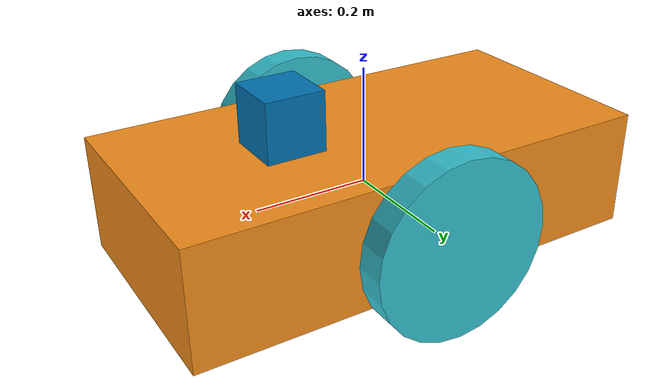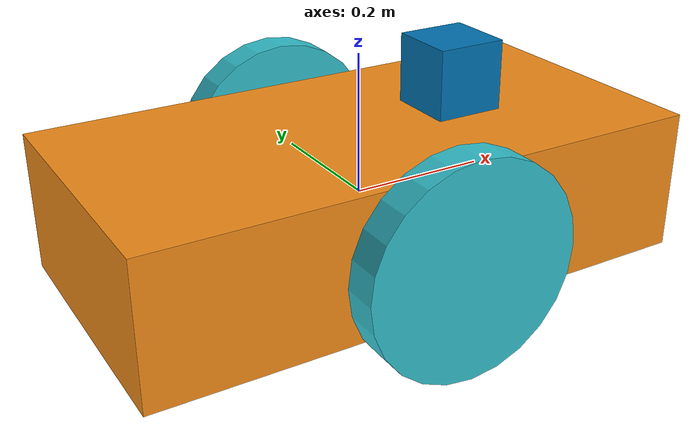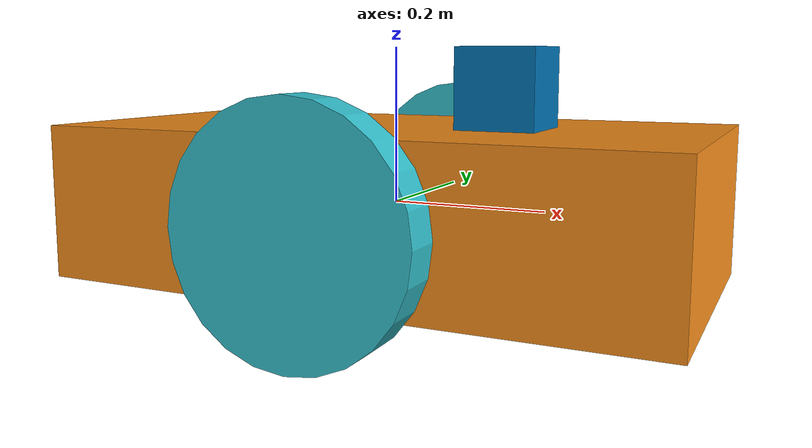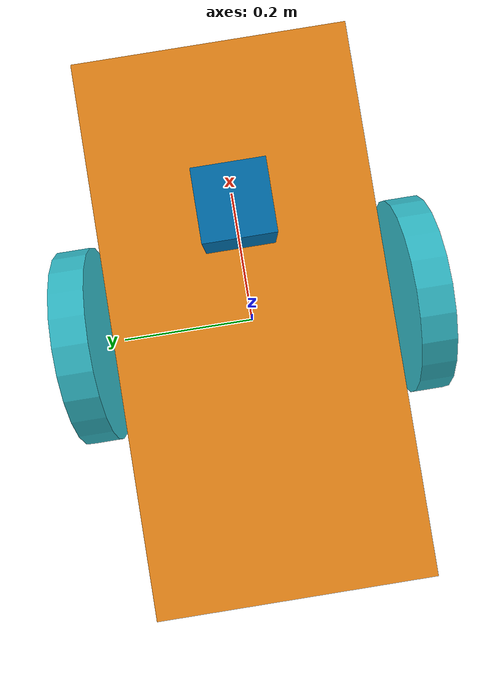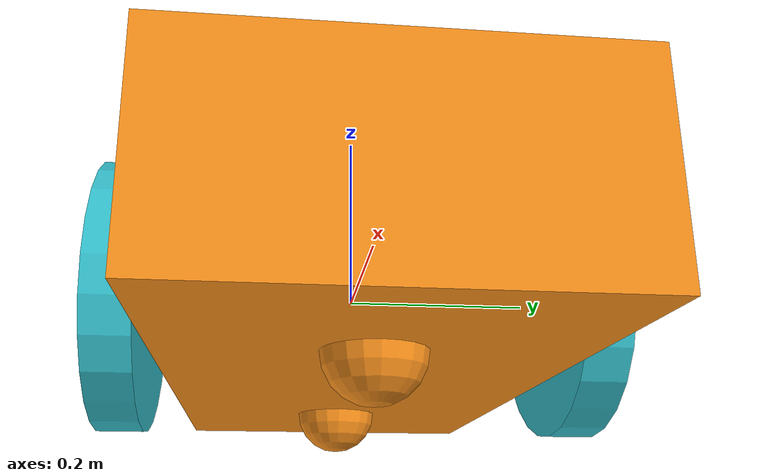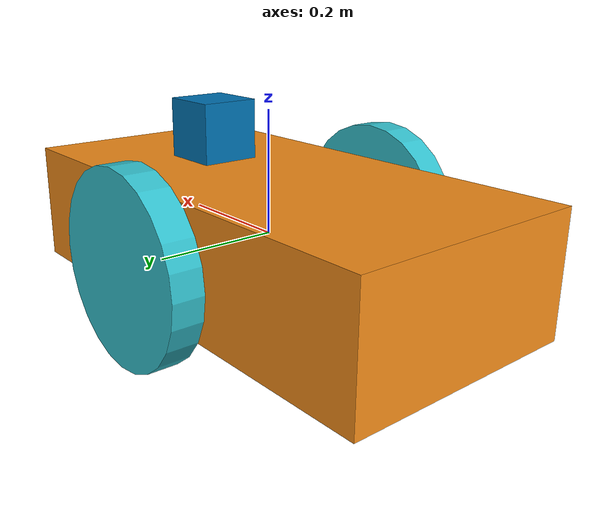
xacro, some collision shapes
<?xml version='1.0'?>

<robot name="my_robot" xmlns:xacro="http://www.ros.org/wiki/xacro">

    <xacro:include filename="$(find my_robot)/urdf/my_robot.gazebo" />

    <link name="robot_footprint"></link>

    <joint name="robot_footprint_joint" type="fixed">
        <origin xyz="0 0 0" rpy="0 0 0" />
        <parent link="robot_footprint"/>
        <child link="chassis" />
    </joint>

    <link name='chassis'>
        <pose>0 0 0.1 0 0 0</pose>

        <inertial>
        <mass value="15.0"/>
        <origin xyz="0.0 0 0" rpy=" 0 0 0"/>
        <inertia
            ixx="0.1" ixy="0" ixz="0"
            iyy="0.1" iyz="0"
            izz="0.1"
        />
        </inertial>

        <collision name='collision'>
            <origin xyz="0 0 0" rpy=" 0 0 0"/>
            <geometry>
                <box size=".8 .4 .2"/>
            </geometry>
        </collision>

        <visual name='chassis_visual'>
            <origin xyz="0 0 0" rpy=" 0 0 0"/>
            <geometry>
                <box size=".8 .4 .2"/>
            </geometry>
        </visual>

        <collision name='back_caster_collision'>
            <origin xyz="-0.2 0 -0.1" rpy=" 0 0 0"/>
            <geometry>
                <sphere radius="0.05"/>
            </geometry>
        </collision>

        <visual name='back_caster_visual'>
            <origin xyz="-0.2 0 -0.1" rpy=" 0 0 0"/>
            <geometry>
                <sphere radius="0.05"/>
            </geometry>
        </visual>

        <collision name='front_caster_collision'>
            <origin xyz="0.2 0 -0.1" rpy=" 0 0 0"/>
            <geometry>
                <sphere radius="0.05"/>
            </geometry>
        </collision>

        <visual name='front_caster_visual'>
            <origin xyz="0.2 0 -0.1" rpy=" 0 0 0"/>
            <geometry>
                <sphere radius="0.05"/>
            </geometry>
        </visual>

    </link>

    <link name="left_wheel">
        <pose>0 0 0.1 0 0 0</pose>
        <inertial>
            <mass value="5.0"/>
            <origin xyz="0.0 0.0 0.0" rpy="0.0 1.5707 1.5707"/>
            <inertia
                ixx="0.0" ixy="0" ixz="0"
                iyy="0.1" iyz="0"
                izz="0.1"
            />
        </inertial>

        <visual>
            <origin xyz="0.0 -0.4 0.0" rpy="0.0 1.5707 1.5707"/>
            <geometry>
                <cylinder radius="0.15" length="0.05"/>
            </geometry>
            <material name="cyan"/>
        </visual>

        <collision>
            <origin xyz="0.0 -0.4 0.0" rpy="0.0 1.5707 1.5707"/>
            <geometry>
                <cylinder radius="0.15" length="0.05"/>
            </geometry>
        </collision>

    </link>

    <joint name="left_wheel_hinge" type="continuous">
        <origin xyz="0.0 0.15 0.0" rpy="0.0 0.0 0.0"/>
        <parent link="chassis"/>
        <child link="left_wheel"/>
        <axis xyz="0.0 1.0 0.0" rpy="0.0 0.0 0.0"/>
        <limit lower="0.0" upper="0.0" effort="1000.0" velocity="1000.0"/>
        <dynamics damping="1.0" friction="1.0"/>
    </joint>

    <link name="right_wheel">
        <pose>0.0 0.0 0.1 0 0 0</pose>
        <inertial>
            <mass value="5"/>
            <origin xyz="0.0 0.0 0.0" rpy="0.0 1.5707 1.5707"/>
            <inertia
                ixx="0.0" ixy="0" ixz="0"
                iyy="0.1" iyz="0"
                izz="0.1"
            />
        </inertial>

        <visual>
            <origin xyz="0.0 0.4 0.0" rpy="0.0 1.5707 1.5707"/>
            <geometry>
                <cylinder radius="0.15" length="0.05"/>
            </geometry>
            <material name="cyan"/>
        </visual>

        <collision>
            <origin xyz="0.0 0.4 0.0" rpy="0.0 1.5707 1.5707"/>
            <geometry>
                <cylinder radius="0.15" length="0.05"/>
            </geometry>
        </collision>

    </link>

    <joint name="right_wheel_hinge" type="continuous">
        <origin xyz="0.0 -0.15 0.0" rpy="0.0 0.0 0.0"/>
        <parent link="chassis"/>
        <child link="right_wheel"/>
        <axis xyz="0.0 1.0 0.0" rpy="0.0 0.0 0.0"/>
        <limit lower="0.0" upper="0.0" effort="1000.0" velocity="1000.0"/>
        <dynamics damping="1.0" friction="1.0"/>
    </joint>

    <link name="hokuyo">

        <inertial>
            <mass value="1e-5"/>
            <origin xyz="0.0 0.0 0.0" rpy="0.0 0.0 0.0"/>
            <inertia ixx="1e-6" ixy="0.0" ixz="0.0" iyy="1e-6" iyz="0.0" izz="1e-6"/>
        </inertial>

        <visual>
            <origin xyz="0.0 0.0 0.0" rpy="0.0 0.0 0.0"/>
            <geometry>
                <mesh filename="package://my_robot/meshes/hokuyo.dae"/>
            </geometry>
        </visual>

        <collision>
            <origin xyz="0.0 0.0 0.0" rpy="0.0 0.0 0.0"/>
            <geometry>
                <box size="0.1 0.1 0.1"/>
            </geometry>
        </collision>

    </link>

    <joint name="hokuyo_joint" type="fixed">

        <origin xyz="0.15 0.0 0.15  " rpy="0.0 0.0 0.0"/>
        <axis xyz="0.0 1.0 0.0"/>
        <parent link="chassis"/>
        <child link="hokuyo"/>

    </joint>

    <link name="camera">

        <inertial>
            <mass value="0.1"/>
            <origin xyz="0.0 0.0 0.0" rpy="0.0 0.0 0.0"/>
            <inertia ixx="1e-6" ixy="0.0" ixz="0.0" iyy="1e-6" iyz="0.0" izz="1e-6"/>
        </inertial>

        <visual>
            <origin xyz="0.0 0.0 0.0" rpy="0.0 0.0 0.0"/>
            <geometry>
                <box size="0.05 0.05 0.05"/>
            </geometry>
        </visual>

        <collision>
            <origin xyz="0.0 0.0 0.0" rpy="0.0 0.0 0.0"/>
            <geometry>
                <box size="0.05 0.05 0.05"/>
            </geometry>
        </collision>

    </link>

    <joint name="camera_joint" type="fixed">

        <origin xyz="0.2 0.0 0.0" rpy="0.0 0.0 0.0"/>
        <axis xyz="0.0 1.0 0.0"/>
        <parent link="chassis"/>
        <child link="camera"/>

    </joint>

    <gazebo reference="camera">
        <material>Gazebo/Grey</material>
    </gazebo>

    <joint name="camera_optical_joint" type="fixed">
        <origin xyz="0.0 0.0 0.0" rpy="-1.5707 0.0 -1.5707"/>
        <parent link="camera"/>
        <child link="camera_link_optical"/>
    </joint>

    <link name="camera_link_optical">
    </link>

    <gazebo reference="chassis">
        <material>Gazebo/Orange</material>
    </gazebo>

    <gazebo reference="left_wheel">
        <material>Gazebo/Black</material>
    </gazebo>

    <gazebo reference="right_wheel">
        <material>Gazebo/Black</material>
    </gazebo>

</robot>
